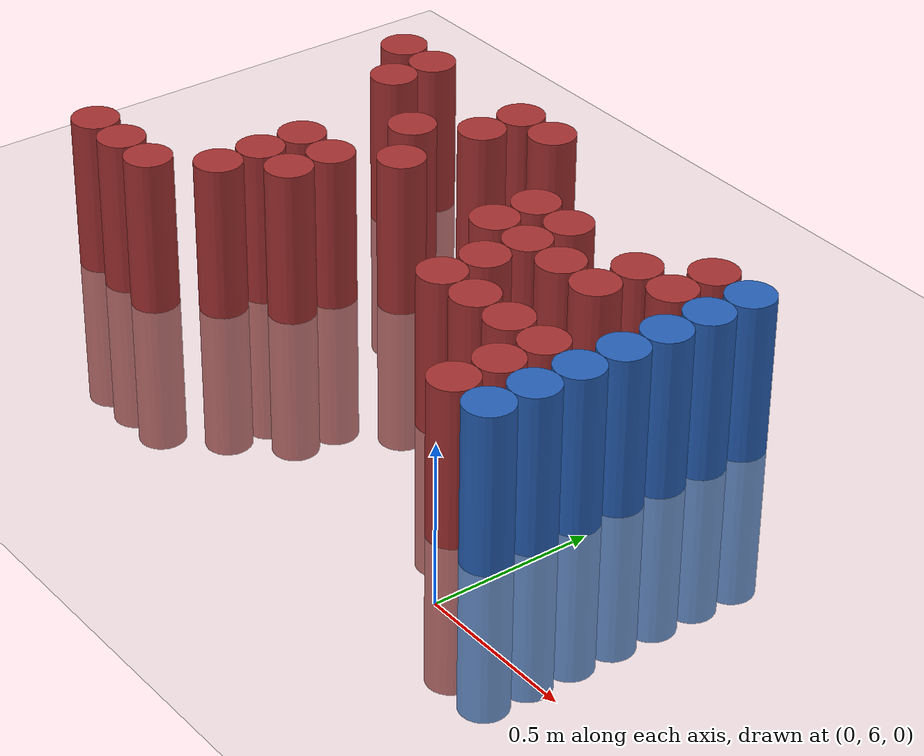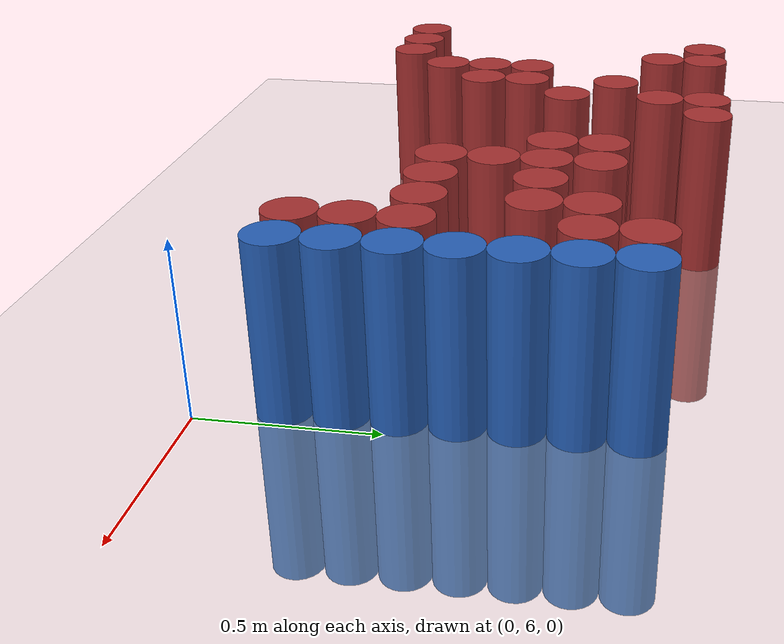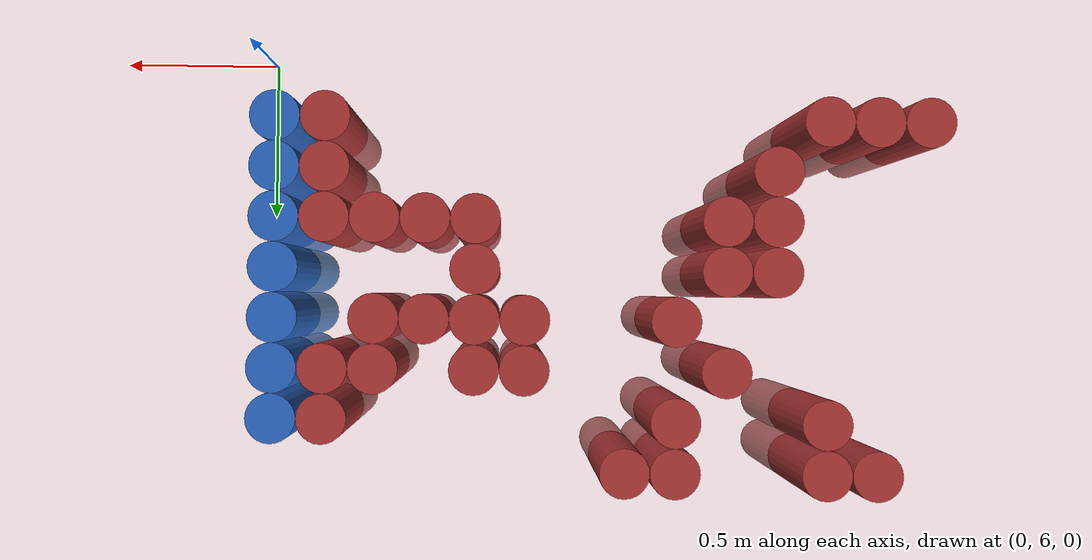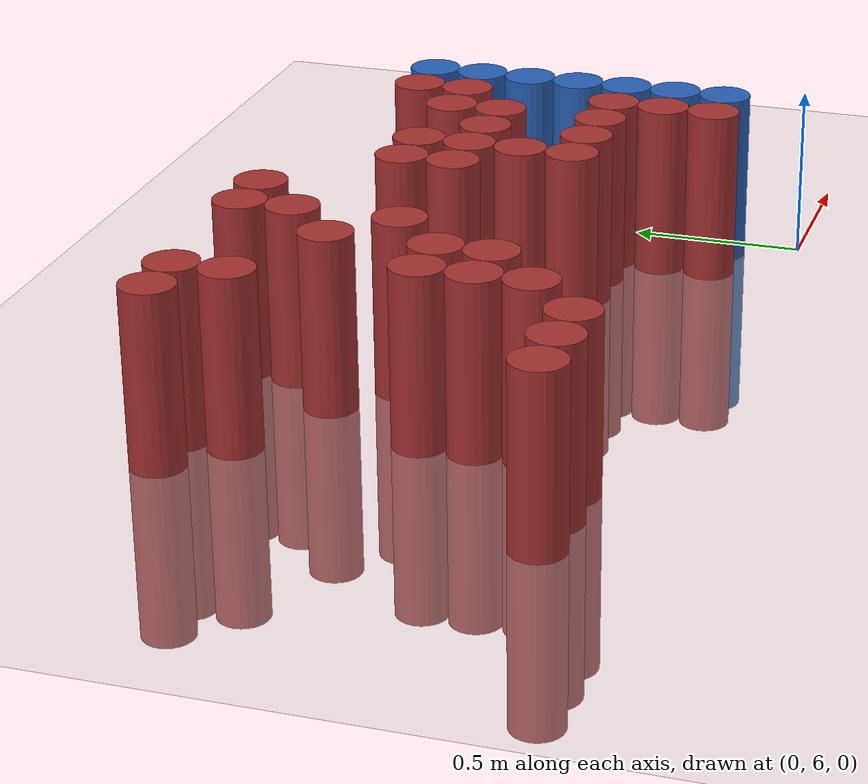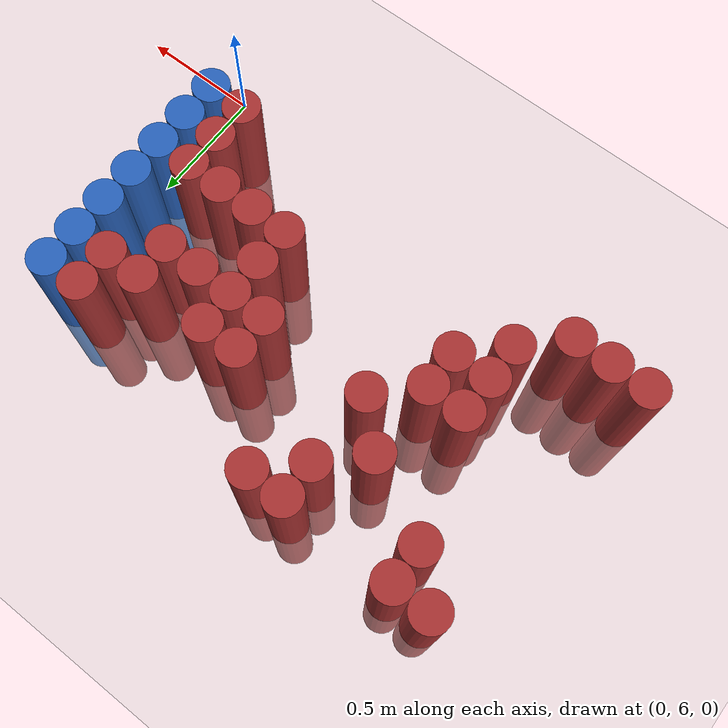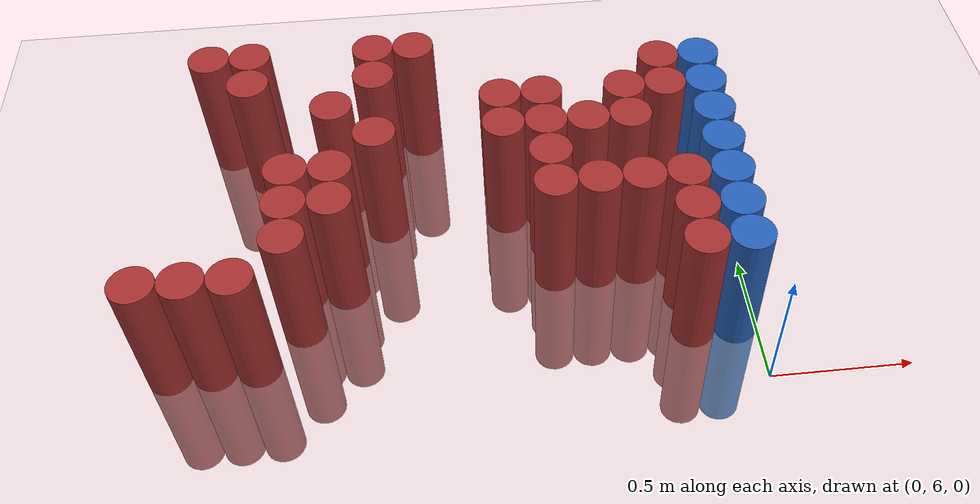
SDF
<sdf version="1.6">
 <world name="default">
  <model name="ground_plane">
   <static>1</static>
   <link name="link">
    <collision name="collision">
     <geometry><plane><normal>0 0 1</normal><size>100 100</size></plane></geometry>
     <surface><friction><ode><mu>100</mu><mu2>50</mu2></ode></friction></surface>
    </collision>
    <visual name="visual">
     <cast_shadows>0</cast_shadows>
     <geometry><plane><normal>0 0 1</normal><size>100 100</size></plane></geometry>
     <material>
      <script><uri>file://media/materials/scripts/gazebo.material</uri><name>Gazebo/Grey</name></script>
     </material>
    </visual>
   </link>
  </model>
  <model name="unit_cylinder_224">
   <static>1</static>
   <pose>-2.025000 6.225000 0.000000 0.000000 0.000000 0.000000</pose>
   <link name="link">
    <inertial>
     <mass>1</mass>
     <inertia><ixx>0.145833</ixx><ixy>0</ixy><ixz>0</ixz><iyy>0.145833</iyy><iyz>0</iyz><izz>0.125</izz></inertia>
    </inertial>
    <collision name="collision">
     <geometry><cylinder><radius>0.075000</radius><length>1</length></cylinder></geometry>
    </collision>
    <visual name="visual">
     <geometry><cylinder><radius>0.075000</radius><length>1</length></cylinder></geometry>
     <material>
      <ambient>0.648000 0.192000 0.192000 1</ambient>
      <diffuse>0.648000 0.192000 0.192000 1</diffuse>
     </material>
     <material>
      <script><name>Gazebo/Grey</name><uri>file://media/materials/scripts/gazebo.material</uri></script>
     </material>
    </visual>
    <sensor name="sensor_contact" type="contact"><contact><collision>collision</collision></contact></sensor>
   </link>
   <plugin filename="gz-sim-touchplugin-system" name="gz::sim::systems::TouchPlugin">
    <target>robot</target>
    <namespace>robot</namespace>
    <time>0.001</time>
    <enabled>true</enabled>
   </plugin>
  </model>
  <model name="unit_cylinder_228">
   <static>1</static>
   <pose>-1.875000 6.225000 0.000000 0.000000 0.000000 0.000000</pose>
   <link name="link">
    <inertial>
     <mass>1</mass>
     <inertia><ixx>0.145833</ixx><ixy>0</ixy><ixz>0</ixz><iyy>0.145833</iyy><iyz>0</iyz><izz>0.125</izz></inertia>
    </inertial>
    <collision name="collision">
     <geometry><cylinder><radius>0.075000</radius><length>1</length></cylinder></geometry>
    </collision>
    <visual name="visual">
     <geometry><cylinder><radius>0.075000</radius><length>1</length></cylinder></geometry>
     <material>
      <ambient>0.648000 0.192000 0.192000 1</ambient>
      <diffuse>0.648000 0.192000 0.192000 1</diffuse>
     </material>
     <material>
      <script><name>Gazebo/Grey</name><uri>file://media/materials/scripts/gazebo.material</uri></script>
     </material>
    </visual>
    <sensor name="sensor_contact" type="contact"><contact><collision>collision</collision></contact></sensor>
   </link>
   <plugin filename="gz-sim-touchplugin-system" name="gz::sim::systems::TouchPlugin">
    <target>robot</target>
    <namespace>robot</namespace>
    <time>0.001</time>
    <enabled>true</enabled>
   </plugin>
  </model>
  <model name="unit_cylinder_229">
   <static>1</static>
   <pose>-1.875000 7.275000 0.000000 0.000000 0.000000 0.000000</pose>
   <link name="link">
    <inertial>
     <mass>1</mass>
     <inertia><ixx>0.145833</ixx><ixy>0</ixy><ixz>0</ixz><iyy>0.145833</iyy><iyz>0</iyz><izz>0.125</izz></inertia>
    </inertial>
    <collision name="collision">
     <geometry><cylinder><radius>0.075000</radius><length>1</length></cylinder></geometry>
    </collision>
    <visual name="visual">
     <geometry><cylinder><radius>0.075000</radius><length>1</length></cylinder></geometry>
     <material>
      <ambient>0.648000 0.192000 0.192000 1</ambient>
      <diffuse>0.648000 0.192000 0.192000 1</diffuse>
     </material>
     <material>
      <script><name>Gazebo/Grey</name><uri>file://media/materials/scripts/gazebo.material</uri></script>
     </material>
    </visual>
    <sensor name="sensor_contact" type="contact"><contact><collision>collision</collision></contact></sensor>
   </link>
   <plugin filename="gz-sim-touchplugin-system" name="gz::sim::systems::TouchPlugin">
    <target>robot</target>
    <namespace>robot</namespace>
    <time>0.001</time>
    <enabled>true</enabled>
   </plugin>
  </model>
  <model name="unit_cylinder_232">
   <static>1</static>
   <pose>-1.725000 6.225000 0.000000 0.000000 0.000000 0.000000</pose>
   <link name="link">
    <inertial>
     <mass>1</mass>
     <inertia><ixx>0.145833</ixx><ixy>0</ixy><ixz>0</ixz><iyy>0.145833</iyy><iyz>0</iyz><izz>0.125</izz></inertia>
    </inertial>
    <collision name="collision">
     <geometry><cylinder><radius>0.075000</radius><length>1</length></cylinder></geometry>
    </collision>
    <visual name="visual">
     <geometry><cylinder><radius>0.075000</radius><length>1</length></cylinder></geometry>
     <material>
      <ambient>0.648000 0.192000 0.192000 1</ambient>
      <diffuse>0.648000 0.192000 0.192000 1</diffuse>
     </material>
     <material>
      <script><name>Gazebo/Grey</name><uri>file://media/materials/scripts/gazebo.material</uri></script>
     </material>
    </visual>
    <sensor name="sensor_contact" type="contact"><contact><collision>collision</collision></contact></sensor>
   </link>
   <plugin filename="gz-sim-touchplugin-system" name="gz::sim::systems::TouchPlugin">
    <target>robot</target>
    <namespace>robot</namespace>
    <time>0.001</time>
    <enabled>true</enabled>
   </plugin>
  </model>
  <model name="unit_cylinder_233">
   <static>1</static>
   <pose>-1.725000 7.125000 0.000000 0.000000 0.000000 0.000000</pose>
   <link name="link">
    <inertial>
     <mass>1</mass>
     <inertia><ixx>0.145833</ixx><ixy>0</ixy><ixz>0</ixz><iyy>0.145833</iyy><iyz>0</iyz><izz>0.125</izz></inertia>
    </inertial>
    <collision name="collision">
     <geometry><cylinder><radius>0.075000</radius><length>1</length></cylinder></geometry>
    </collision>
    <visual name="visual">
     <geometry><cylinder><radius>0.075000</radius><length>1</length></cylinder></geometry>
     <material>
      <ambient>0.648000 0.192000 0.192000 1</ambient>
      <diffuse>0.648000 0.192000 0.192000 1</diffuse>
     </material>
     <material>
      <script><name>Gazebo/Grey</name><uri>file://media/materials/scripts/gazebo.material</uri></script>
     </material>
    </visual>
    <sensor name="sensor_contact" type="contact"><contact><collision>collision</collision></contact></sensor>
   </link>
   <plugin filename="gz-sim-touchplugin-system" name="gz::sim::systems::TouchPlugin">
    <target>robot</target>
    <namespace>robot</namespace>
    <time>0.001</time>
    <enabled>true</enabled>
   </plugin>
  </model>
  <model name="unit_cylinder_234">
   <static>1</static>
   <pose>-1.725000 7.275000 0.000000 0.000000 0.000000 0.000000</pose>
   <link name="link">
    <inertial>
     <mass>1</mass>
     <inertia><ixx>0.145833</ixx><ixy>0</ixy><ixz>0</ixz><iyy>0.145833</iyy><iyz>0</iyz><izz>0.125</izz></inertia>
    </inertial>
    <collision name="collision">
     <geometry><cylinder><radius>0.075000</radius><length>1</length></cylinder></geometry>
    </collision>
    <visual name="visual">
     <geometry><cylinder><radius>0.075000</radius><length>1</length></cylinder></geometry>
     <material>
      <ambient>0.648000 0.192000 0.192000 1</ambient>
      <diffuse>0.648000 0.192000 0.192000 1</diffuse>
     </material>
     <material>
      <script><name>Gazebo/Grey</name><uri>file://media/materials/scripts/gazebo.material</uri></script>
     </material>
    </visual>
    <sensor name="sensor_contact" type="contact"><contact><collision>collision</collision></contact></sensor>
   </link>
   <plugin filename="gz-sim-touchplugin-system" name="gz::sim::systems::TouchPlugin">
    <target>robot</target>
    <namespace>robot</namespace>
    <time>0.001</time>
    <enabled>true</enabled>
   </plugin>
  </model>
  <model name="unit_cylinder_238">
   <static>1</static>
   <pose>-1.575000 6.375000 0.000000 0.000000 0.000000 0.000000</pose>
   <link name="link">
    <inertial>
     <mass>1</mass>
     <inertia><ixx>0.145833</ixx><ixy>0</ixy><ixz>0</ixz><iyy>0.145833</iyy><iyz>0</iyz><izz>0.125</izz></inertia>
    </inertial>
    <collision name="collision">
     <geometry><cylinder><radius>0.075000</radius><length>1</length></cylinder></geometry>
    </collision>
    <visual name="visual">
     <geometry><cylinder><radius>0.075000</radius><length>1</length></cylinder></geometry>
     <material>
      <ambient>0.648000 0.192000 0.192000 1</ambient>
      <diffuse>0.648000 0.192000 0.192000 1</diffuse>
     </material>
     <material>
      <script><name>Gazebo/Grey</name><uri>file://media/materials/scripts/gazebo.material</uri></script>
     </material>
    </visual>
    <sensor name="sensor_contact" type="contact"><contact><collision>collision</collision></contact></sensor>
   </link>
   <plugin filename="gz-sim-touchplugin-system" name="gz::sim::systems::TouchPlugin">
    <target>robot</target>
    <namespace>robot</namespace>
    <time>0.001</time>
    <enabled>true</enabled>
   </plugin>
  </model>
  <model name="unit_cylinder_239">
   <static>1</static>
   <pose>-1.575000 6.525000 0.000000 0.000000 0.000000 0.000000</pose>
   <link name="link">
    <inertial>
     <mass>1</mass>
     <inertia><ixx>0.145833</ixx><ixy>0</ixy><ixz>0</ixz><iyy>0.145833</iyy><iyz>0</iyz><izz>0.125</izz></inertia>
    </inertial>
    <collision name="collision">
     <geometry><cylinder><radius>0.075000</radius><length>1</length></cylinder></geometry>
    </collision>
    <visual name="visual">
     <geometry><cylinder><radius>0.075000</radius><length>1</length></cylinder></geometry>
     <material>
      <ambient>0.648000 0.192000 0.192000 1</ambient>
      <diffuse>0.648000 0.192000 0.192000 1</diffuse>
     </material>
     <material>
      <script><name>Gazebo/Grey</name><uri>file://media/materials/scripts/gazebo.material</uri></script>
     </material>
    </visual>
    <sensor name="sensor_contact" type="contact"><contact><collision>collision</collision></contact></sensor>
   </link>
   <plugin filename="gz-sim-touchplugin-system" name="gz::sim::systems::TouchPlugin">
    <target>robot</target>
    <namespace>robot</namespace>
    <time>0.001</time>
    <enabled>true</enabled>
   </plugin>
  </model>
  <model name="unit_cylinder_240">
   <static>1</static>
   <pose>-1.575000 6.675000 0.000000 0.000000 0.000000 0.000000</pose>
   <link name="link">
    <inertial>
     <mass>1</mass>
     <inertia><ixx>0.145833</ixx><ixy>0</ixy><ixz>0</ixz><iyy>0.145833</iyy><iyz>0</iyz><izz>0.125</izz></inertia>
    </inertial>
    <collision name="collision">
     <geometry><cylinder><radius>0.075000</radius><length>1</length></cylinder></geometry>
    </collision>
    <visual name="visual">
     <geometry><cylinder><radius>0.075000</radius><length>1</length></cylinder></geometry>
     <material>
      <ambient>0.648000 0.192000 0.192000 1</ambient>
      <diffuse>0.648000 0.192000 0.192000 1</diffuse>
     </material>
     <material>
      <script><name>Gazebo/Grey</name><uri>file://media/materials/scripts/gazebo.material</uri></script>
     </material>
    </visual>
    <sensor name="sensor_contact" type="contact"><contact><collision>collision</collision></contact></sensor>
   </link>
   <plugin filename="gz-sim-touchplugin-system" name="gz::sim::systems::TouchPlugin">
    <target>robot</target>
    <namespace>robot</namespace>
    <time>0.001</time>
    <enabled>true</enabled>
   </plugin>
  </model>
  <model name="unit_cylinder_243">
   <static>1</static>
   <pose>-1.425000 6.525000 0.000000 0.000000 0.000000 0.000000</pose>
   <link name="link">
    <inertial>
     <mass>1</mass>
     <inertia><ixx>0.145833</ixx><ixy>0</ixy><ixz>0</ixz><iyy>0.145833</iyy><iyz>0</iyz><izz>0.125</izz></inertia>
    </inertial>
    <collision name="collision">
     <geometry><cylinder><radius>0.075000</radius><length>1</length></cylinder></geometry>
    </collision>
    <visual name="visual">
     <geometry><cylinder><radius>0.075000</radius><length>1</length></cylinder></geometry>
     <material>
      <ambient>0.648000 0.192000 0.192000 1</ambient>
      <diffuse>0.648000 0.192000 0.192000 1</diffuse>
     </material>
     <material>
      <script><name>Gazebo/Grey</name><uri>file://media/materials/scripts/gazebo.material</uri></script>
     </material>
    </visual>
    <sensor name="sensor_contact" type="contact"><contact><collision>collision</collision></contact></sensor>
   </link>
   <plugin filename="gz-sim-touchplugin-system" name="gz::sim::systems::TouchPlugin">
    <target>robot</target>
    <namespace>robot</namespace>
    <time>0.001</time>
    <enabled>true</enabled>
   </plugin>
  </model>
  <model name="unit_cylinder_244">
   <static>1</static>
   <pose>-1.425000 6.675000 0.000000 0.000000 0.000000 0.000000</pose>
   <link name="link">
    <inertial>
     <mass>1</mass>
     <inertia><ixx>0.145833</ixx><ixy>0</ixy><ixz>0</ixz><iyy>0.145833</iyy><iyz>0</iyz><izz>0.125</izz></inertia>
    </inertial>
    <collision name="collision">
     <geometry><cylinder><radius>0.075000</radius><length>1</length></cylinder></geometry>
    </collision>
    <visual name="visual">
     <geometry><cylinder><radius>0.075000</radius><length>1</length></cylinder></geometry>
     <material>
      <ambient>0.648000 0.192000 0.192000 1</ambient>
      <diffuse>0.648000 0.192000 0.192000 1</diffuse>
     </material>
     <material>
      <script><name>Gazebo/Grey</name><uri>file://media/materials/scripts/gazebo.material</uri></script>
     </material>
    </visual>
    <sensor name="sensor_contact" type="contact"><contact><collision>collision</collision></contact></sensor>
   </link>
   <plugin filename="gz-sim-touchplugin-system" name="gz::sim::systems::TouchPlugin">
    <target>robot</target>
    <namespace>robot</namespace>
    <time>0.001</time>
    <enabled>true</enabled>
   </plugin>
  </model>
  <model name="unit_cylinder_245">
   <static>1</static>
   <pose>-1.425000 6.975000 0.000000 0.000000 0.000000 0.000000</pose>
   <link name="link">
    <inertial>
     <mass>1</mass>
     <inertia><ixx>0.145833</ixx><ixy>0</ixy><ixz>0</ixz><iyy>0.145833</iyy><iyz>0</iyz><izz>0.125</izz></inertia>
    </inertial>
    <collision name="collision">
     <geometry><cylinder><radius>0.075000</radius><length>1</length></cylinder></geometry>
    </collision>
    <visual name="visual">
     <geometry><cylinder><radius>0.075000</radius><length>1</length></cylinder></geometry>
     <material>
      <ambient>0.648000 0.192000 0.192000 1</ambient>
      <diffuse>0.648000 0.192000 0.192000 1</diffuse>
     </material>
     <material>
      <script><name>Gazebo/Grey</name><uri>file://media/materials/scripts/gazebo.material</uri></script>
     </material>
    </visual>
    <sensor name="sensor_contact" type="contact"><contact><collision>collision</collision></contact></sensor>
   </link>
   <plugin filename="gz-sim-touchplugin-system" name="gz::sim::systems::TouchPlugin">
    <target>robot</target>
    <namespace>robot</namespace>
    <time>0.001</time>
    <enabled>true</enabled>
   </plugin>
  </model>
  <model name="unit_cylinder_248">
   <static>1</static>
   <pose>-1.275000 6.825000 0.000000 0.000000 0.000000 0.000000</pose>
   <link name="link">
    <inertial>
     <mass>1</mass>
     <inertia><ixx>0.145833</ixx><ixy>0</ixy><ixz>0</ixz><iyy>0.145833</iyy><iyz>0</iyz><izz>0.125</izz></inertia>
    </inertial>
    <collision name="collision">
     <geometry><cylinder><radius>0.075000</radius><length>1</length></cylinder></geometry>
    </collision>
    <visual name="visual">
     <geometry><cylinder><radius>0.075000</radius><length>1</length></cylinder></geometry>
     <material>
      <ambient>0.648000 0.192000 0.192000 1</ambient>
      <diffuse>0.648000 0.192000 0.192000 1</diffuse>
     </material>
     <material>
      <script><name>Gazebo/Grey</name><uri>file://media/materials/scripts/gazebo.material</uri></script>
     </material>
    </visual>
    <sensor name="sensor_contact" type="contact"><contact><collision>collision</collision></contact></sensor>
   </link>
   <plugin filename="gz-sim-touchplugin-system" name="gz::sim::systems::TouchPlugin">
    <target>robot</target>
    <namespace>robot</namespace>
    <time>0.001</time>
    <enabled>true</enabled>
   </plugin>
  </model>
  <model name="unit_cylinder_249">
   <static>1</static>
   <pose>-1.275000 7.125000 0.000000 0.000000 0.000000 0.000000</pose>
   <link name="link">
    <inertial>
     <mass>1</mass>
     <inertia><ixx>0.145833</ixx><ixy>0</ixy><ixz>0</ixz><iyy>0.145833</iyy><iyz>0</iyz><izz>0.125</izz></inertia>
    </inertial>
    <collision name="collision">
     <geometry><cylinder><radius>0.075000</radius><length>1</length></cylinder></geometry>
    </collision>
    <visual name="visual">
     <geometry><cylinder><radius>0.075000</radius><length>1</length></cylinder></geometry>
     <material>
      <ambient>0.648000 0.192000 0.192000 1</ambient>
      <diffuse>0.648000 0.192000 0.192000 1</diffuse>
     </material>
     <material>
      <script><name>Gazebo/Grey</name><uri>file://media/materials/scripts/gazebo.material</uri></script>
     </material>
    </visual>
    <sensor name="sensor_contact" type="contact"><contact><collision>collision</collision></contact></sensor>
   </link>
   <plugin filename="gz-sim-touchplugin-system" name="gz::sim::systems::TouchPlugin">
    <target>robot</target>
    <namespace>robot</namespace>
    <time>0.001</time>
    <enabled>true</enabled>
   </plugin>
  </model>
  <model name="unit_cylinder_250">
   <static>1</static>
   <pose>-1.275000 7.275000 0.000000 0.000000 0.000000 0.000000</pose>
   <link name="link">
    <inertial>
     <mass>1</mass>
     <inertia><ixx>0.145833</ixx><ixy>0</ixy><ixz>0</ixz><iyy>0.145833</iyy><iyz>0</iyz><izz>0.125</izz></inertia>
    </inertial>
    <collision name="collision">
     <geometry><cylinder><radius>0.075000</radius><length>1</length></cylinder></geometry>
    </collision>
    <visual name="visual">
     <geometry><cylinder><radius>0.075000</radius><length>1</length></cylinder></geometry>
     <material>
      <ambient>0.648000 0.192000 0.192000 1</ambient>
      <diffuse>0.648000 0.192000 0.192000 1</diffuse>
     </material>
     <material>
      <script><name>Gazebo/Grey</name><uri>file://media/materials/scripts/gazebo.material</uri></script>
     </material>
    </visual>
    <sensor name="sensor_contact" type="contact"><contact><collision>collision</collision></contact></sensor>
   </link>
   <plugin filename="gz-sim-touchplugin-system" name="gz::sim::systems::TouchPlugin">
    <target>robot</target>
    <namespace>robot</namespace>
    <time>0.001</time>
    <enabled>true</enabled>
   </plugin>
  </model>
  <model name="unit_cylinder_253">
   <static>1</static>
   <pose>-1.125000 7.275000 0.000000 0.000000 0.000000 0.000000</pose>
   <link name="link">
    <inertial>
     <mass>1</mass>
     <inertia><ixx>0.145833</ixx><ixy>0</ixy><ixz>0</ixz><iyy>0.145833</iyy><iyz>0</iyz><izz>0.125</izz></inertia>
    </inertial>
    <collision name="collision">
     <geometry><cylinder><radius>0.075000</radius><length>1</length></cylinder></geometry>
    </collision>
    <visual name="visual">
     <geometry><cylinder><radius>0.075000</radius><length>1</length></cylinder></geometry>
     <material>
      <ambient>0.648000 0.192000 0.192000 1</ambient>
      <diffuse>0.648000 0.192000 0.192000 1</diffuse>
     </material>
     <material>
      <script><name>Gazebo/Grey</name><uri>file://media/materials/scripts/gazebo.material</uri></script>
     </material>
    </visual>
    <sensor name="sensor_contact" type="contact"><contact><collision>collision</collision></contact></sensor>
   </link>
   <plugin filename="gz-sim-touchplugin-system" name="gz::sim::systems::TouchPlugin">
    <target>robot</target>
    <namespace>robot</namespace>
    <time>0.001</time>
    <enabled>true</enabled>
   </plugin>
  </model>
  <model name="unit_cylinder_266">
   <static>1</static>
   <pose>-0.825000 6.825000 0.000000 0.000000 0.000000 0.000000</pose>
   <link name="link">
    <inertial>
     <mass>1</mass>
     <inertia><ixx>0.145833</ixx><ixy>0</ixy><ixz>0</ixz><iyy>0.145833</iyy><iyz>0</iyz><izz>0.125</izz></inertia>
    </inertial>
    <collision name="collision">
     <geometry><cylinder><radius>0.075000</radius><length>1</length></cylinder></geometry>
    </collision>
    <visual name="visual">
     <geometry><cylinder><radius>0.075000</radius><length>1</length></cylinder></geometry>
     <material>
      <ambient>0.648000 0.192000 0.192000 1</ambient>
      <diffuse>0.648000 0.192000 0.192000 1</diffuse>
     </material>
     <material>
      <script><name>Gazebo/Grey</name><uri>file://media/materials/scripts/gazebo.material</uri></script>
     </material>
    </visual>
    <sensor name="sensor_contact" type="contact"><contact><collision>collision</collision></contact></sensor>
   </link>
   <plugin filename="gz-sim-touchplugin-system" name="gz::sim::systems::TouchPlugin">
    <target>robot</target>
    <namespace>robot</namespace>
    <time>0.001</time>
    <enabled>true</enabled>
   </plugin>
  </model>
  <model name="unit_cylinder_267">
   <static>1</static>
   <pose>-0.825000 6.975000 0.000000 0.000000 0.000000 0.000000</pose>
   <link name="link">
    <inertial>
     <mass>1</mass>
     <inertia><ixx>0.145833</ixx><ixy>0</ixy><ixz>0</ixz><iyy>0.145833</iyy><iyz>0</iyz><izz>0.125</izz></inertia>
    </inertial>
    <collision name="collision">
     <geometry><cylinder><radius>0.075000</radius><length>1</length></cylinder></geometry>
    </collision>
    <visual name="visual">
     <geometry><cylinder><radius>0.075000</radius><length>1</length></cylinder></geometry>
     <material>
      <ambient>0.648000 0.192000 0.192000 1</ambient>
      <diffuse>0.648000 0.192000 0.192000 1</diffuse>
     </material>
     <material>
      <script><name>Gazebo/Grey</name><uri>file://media/materials/scripts/gazebo.material</uri></script>
     </material>
    </visual>
    <sensor name="sensor_contact" type="contact"><contact><collision>collision</collision></contact></sensor>
   </link>
   <plugin filename="gz-sim-touchplugin-system" name="gz::sim::systems::TouchPlugin">
    <target>robot</target>
    <namespace>robot</namespace>
    <time>0.001</time>
    <enabled>true</enabled>
   </plugin>
  </model>
  <model name="unit_cylinder_277">
   <static>1</static>
   <pose>-0.675000 6.525000 0.000000 0.000000 0.000000 0.000000</pose>
   <link name="link">
    <inertial>
     <mass>1</mass>
     <inertia><ixx>0.145833</ixx><ixy>0</ixy><ixz>0</ixz><iyy>0.145833</iyy><iyz>0</iyz><izz>0.125</izz></inertia>
    </inertial>
    <collision name="collision">
     <geometry><cylinder><radius>0.075000</radius><length>1</length></cylinder></geometry>
    </collision>
    <visual name="visual">
     <geometry><cylinder><radius>0.075000</radius><length>1</length></cylinder></geometry>
     <material>
      <ambient>0.648000 0.192000 0.192000 1</ambient>
      <diffuse>0.648000 0.192000 0.192000 1</diffuse>
     </material>
     <material>
      <script><name>Gazebo/Grey</name><uri>file://media/materials/scripts/gazebo.material</uri></script>
     </material>
    </visual>
    <sensor name="sensor_contact" type="contact"><contact><collision>collision</collision></contact></sensor>
   </link>
   <plugin filename="gz-sim-touchplugin-system" name="gz::sim::systems::TouchPlugin">
    <target>robot</target>
    <namespace>robot</namespace>
    <time>0.001</time>
    <enabled>true</enabled>
   </plugin>
  </model>
  <model name="unit_cylinder_278">
   <static>1</static>
   <pose>-0.675000 6.675000 0.000000 0.000000 0.000000 0.000000</pose>
   <link name="link">
    <inertial>
     <mass>1</mass>
     <inertia><ixx>0.145833</ixx><ixy>0</ixy><ixz>0</ixz><iyy>0.145833</iyy><iyz>0</iyz><izz>0.125</izz></inertia>
    </inertial>
    <collision name="collision">
     <geometry><cylinder><radius>0.075000</radius><length>1</length></cylinder></geometry>
    </collision>
    <visual name="visual">
     <geometry><cylinder><radius>0.075000</radius><length>1</length></cylinder></geometry>
     <material>
      <ambient>0.648000 0.192000 0.192000 1</ambient>
      <diffuse>0.648000 0.192000 0.192000 1</diffuse>
     </material>
     <material>
      <script><name>Gazebo/Grey</name><uri>file://media/materials/scripts/gazebo.material</uri></script>
     </material>
    </visual>
    <sensor name="sensor_contact" type="contact"><contact><collision>collision</collision></contact></sensor>
   </link>
   <plugin filename="gz-sim-touchplugin-system" name="gz::sim::systems::TouchPlugin">
    <target>robot</target>
    <namespace>robot</namespace>
    <time>0.001</time>
    <enabled>true</enabled>
   </plugin>
  </model>
  <model name="unit_cylinder_279">
   <static>1</static>
   <pose>-0.675000 6.825000 0.000000 0.000000 0.000000 0.000000</pose>
   <link name="link">
    <inertial>
     <mass>1</mass>
     <inertia><ixx>0.145833</ixx><ixy>0</ixy><ixz>0</ixz><iyy>0.145833</iyy><iyz>0</iyz><izz>0.125</izz></inertia>
    </inertial>
    <collision name="collision">
     <geometry><cylinder><radius>0.075000</radius><length>1</length></cylinder></geometry>
    </collision>
    <visual name="visual">
     <geometry><cylinder><radius>0.075000</radius><length>1</length></cylinder></geometry>
     <material>
      <ambient>0.648000 0.192000 0.192000 1</ambient>
      <diffuse>0.648000 0.192000 0.192000 1</diffuse>
     </material>
     <material>
      <script><name>Gazebo/Grey</name><uri>file://media/materials/scripts/gazebo.material</uri></script>
     </material>
    </visual>
    <sensor name="sensor_contact" type="contact"><contact><collision>collision</collision></contact></sensor>
   </link>
   <plugin filename="gz-sim-touchplugin-system" name="gz::sim::systems::TouchPlugin">
    <target>robot</target>
    <namespace>robot</namespace>
    <time>0.001</time>
    <enabled>true</enabled>
   </plugin>
  </model>
  <model name="unit_cylinder_280">
   <static>1</static>
   <pose>-0.675000 6.975000 0.000000 0.000000 0.000000 0.000000</pose>
   <link name="link">
    <inertial>
     <mass>1</mass>
     <inertia><ixx>0.145833</ixx><ixy>0</ixy><ixz>0</ixz><iyy>0.145833</iyy><iyz>0</iyz><izz>0.125</izz></inertia>
    </inertial>
    <collision name="collision">
     <geometry><cylinder><radius>0.075000</radius><length>1</length></cylinder></geometry>
    </collision>
    <visual name="visual">
     <geometry><cylinder><radius>0.075000</radius><length>1</length></cylinder></geometry>
     <material>
      <ambient>0.648000 0.192000 0.192000 1</ambient>
      <diffuse>0.648000 0.192000 0.192000 1</diffuse>
     </material>
     <material>
      <script><name>Gazebo/Grey</name><uri>file://media/materials/scripts/gazebo.material</uri></script>
     </material>
    </visual>
    <sensor name="sensor_contact" type="contact"><contact><collision>collision</collision></contact></sensor>
   </link>
   <plugin filename="gz-sim-touchplugin-system" name="gz::sim::systems::TouchPlugin">
    <target>robot</target>
    <namespace>robot</namespace>
    <time>0.001</time>
    <enabled>true</enabled>
   </plugin>
  </model>
  <model name="unit_cylinder_291">
   <static>1</static>
   <pose>-0.525000 6.525000 0.000000 0.000000 0.000000 0.000000</pose>
   <link name="link">
    <inertial>
     <mass>1</mass>
     <inertia><ixx>0.145833</ixx><ixy>0</ixy><ixz>0</ixz><iyy>0.145833</iyy><iyz>0</iyz><izz>0.125</izz></inertia>
    </inertial>
    <collision name="collision">
     <geometry><cylinder><radius>0.075000</radius><length>1</length></cylinder></geometry>
    </collision>
    <visual name="visual">
     <geometry><cylinder><radius>0.075000</radius><length>1</length></cylinder></geometry>
     <material>
      <ambient>0.648000 0.192000 0.192000 1</ambient>
      <diffuse>0.648000 0.192000 0.192000 1</diffuse>
     </material>
     <material>
      <script><name>Gazebo/Grey</name><uri>file://media/materials/scripts/gazebo.material</uri></script>
     </material>
    </visual>
    <sensor name="sensor_contact" type="contact"><contact><collision>collision</collision></contact></sensor>
   </link>
   <plugin filename="gz-sim-touchplugin-system" name="gz::sim::systems::TouchPlugin">
    <target>robot</target>
    <namespace>robot</namespace>
    <time>0.001</time>
    <enabled>true</enabled>
   </plugin>
  </model>
  <model name="unit_cylinder_292">
   <static>1</static>
   <pose>-0.525000 6.825000 0.000000 0.000000 0.000000 0.000000</pose>
   <link name="link">
    <inertial>
     <mass>1</mass>
     <inertia><ixx>0.145833</ixx><ixy>0</ixy><ixz>0</ixz><iyy>0.145833</iyy><iyz>0</iyz><izz>0.125</izz></inertia>
    </inertial>
    <collision name="collision">
     <geometry><cylinder><radius>0.075000</radius><length>1</length></cylinder></geometry>
    </collision>
    <visual name="visual">
     <geometry><cylinder><radius>0.075000</radius><length>1</length></cylinder></geometry>
     <material>
      <ambient>0.648000 0.192000 0.192000 1</ambient>
      <diffuse>0.648000 0.192000 0.192000 1</diffuse>
     </material>
     <material>
      <script><name>Gazebo/Grey</name><uri>file://media/materials/scripts/gazebo.material</uri></script>
     </material>
    </visual>
    <sensor name="sensor_contact" type="contact"><contact><collision>collision</collision></contact></sensor>
   </link>
   <plugin filename="gz-sim-touchplugin-system" name="gz::sim::systems::TouchPlugin">
    <target>robot</target>
    <namespace>robot</namespace>
    <time>0.001</time>
    <enabled>true</enabled>
   </plugin>
  </model>
  <model name="unit_cylinder_302">
   <static>1</static>
   <pose>-0.375000 6.525000 0.000000 0.000000 0.000000 0.000000</pose>
   <link name="link">
    <inertial>
     <mass>1</mass>
     <inertia><ixx>0.145833</ixx><ixy>0</ixy><ixz>0</ixz><iyy>0.145833</iyy><iyz>0</iyz><izz>0.125</izz></inertia>
    </inertial>
    <collision name="collision">
     <geometry><cylinder><radius>0.075000</radius><length>1</length></cylinder></geometry>
    </collision>
    <visual name="visual">
     <geometry><cylinder><radius>0.075000</radius><length>1</length></cylinder></geometry>
     <material>
      <ambient>0.648000 0.192000 0.192000 1</ambient>
      <diffuse>0.648000 0.192000 0.192000 1</diffuse>
     </material>
     <material>
      <script><name>Gazebo/Grey</name><uri>file://media/materials/scripts/gazebo.material</uri></script>
     </material>
    </visual>
    <sensor name="sensor_contact" type="contact"><contact><collision>collision</collision></contact></sensor>
   </link>
   <plugin filename="gz-sim-touchplugin-system" name="gz::sim::systems::TouchPlugin">
    <target>robot</target>
    <namespace>robot</namespace>
    <time>0.001</time>
    <enabled>true</enabled>
   </plugin>
  </model>
  <model name="unit_cylinder_303">
   <static>1</static>
   <pose>-0.375000 6.825000 0.000000 0.000000 0.000000 0.000000</pose>
   <link name="link">
    <inertial>
     <mass>1</mass>
     <inertia><ixx>0.145833</ixx><ixy>0</ixy><ixz>0</ixz><iyy>0.145833</iyy><iyz>0</iyz><izz>0.125</izz></inertia>
    </inertial>
    <collision name="collision">
     <geometry><cylinder><radius>0.075000</radius><length>1</length></cylinder></geometry>
    </collision>
    <visual name="visual">
     <geometry><cylinder><radius>0.075000</radius><length>1</length></cylinder></geometry>
     <material>
      <ambient>0.648000 0.192000 0.192000 1</ambient>
      <diffuse>0.648000 0.192000 0.192000 1</diffuse>
     </material>
     <material>
      <script><name>Gazebo/Grey</name><uri>file://media/materials/scripts/gazebo.material</uri></script>
     </material>
    </visual>
    <sensor name="sensor_contact" type="contact"><contact><collision>collision</collision></contact></sensor>
   </link>
   <plugin filename="gz-sim-touchplugin-system" name="gz::sim::systems::TouchPlugin">
    <target>robot</target>
    <namespace>robot</namespace>
    <time>0.001</time>
    <enabled>true</enabled>
   </plugin>
  </model>
  <model name="unit_cylinder_304">
   <static>1</static>
   <pose>-0.375000 6.975000 0.000000 0.000000 0.000000 0.000000</pose>
   <link name="link">
    <inertial>
     <mass>1</mass>
     <inertia><ixx>0.145833</ixx><ixy>0</ixy><ixz>0</ixz><iyy>0.145833</iyy><iyz>0</iyz><izz>0.125</izz></inertia>
    </inertial>
    <collision name="collision">
     <geometry><cylinder><radius>0.075000</radius><length>1</length></cylinder></geometry>
    </collision>
    <visual name="visual">
     <geometry><cylinder><radius>0.075000</radius><length>1</length></cylinder></geometry>
     <material>
      <ambient>0.648000 0.192000 0.192000 1</ambient>
      <diffuse>0.648000 0.192000 0.192000 1</diffuse>
     </material>
     <material>
      <script><name>Gazebo/Grey</name><uri>file://media/materials/scripts/gazebo.material</uri></script>
     </material>
    </visual>
    <sensor name="sensor_contact" type="contact"><contact><collision>collision</collision></contact></sensor>
   </link>
   <plugin filename="gz-sim-touchplugin-system" name="gz::sim::systems::TouchPlugin">
    <target>robot</target>
    <namespace>robot</namespace>
    <time>0.001</time>
    <enabled>true</enabled>
   </plugin>
  </model>
  <model name="unit_cylinder_310">
   <static>1</static>
   <pose>-0.225000 6.225000 0.000000 0.000000 0.000000 0.000000</pose>
   <link name="link">
    <inertial>
     <mass>1</mass>
     <inertia><ixx>0.145833</ixx><ixy>0</ixy><ixz>0</ixz><iyy>0.145833</iyy><iyz>0</iyz><izz>0.125</izz></inertia>
    </inertial>
    <collision name="collision">
     <geometry><cylinder><radius>0.075000</radius><length>1</length></cylinder></geometry>
    </collision>
    <visual name="visual">
     <geometry><cylinder><radius>0.075000</radius><length>1</length></cylinder></geometry>
     <material>
      <ambient>0.648000 0.192000 0.192000 1</ambient>
      <diffuse>0.648000 0.192000 0.192000 1</diffuse>
     </material>
     <material>
      <script><name>Gazebo/Grey</name><uri>file://media/materials/scripts/gazebo.material</uri></script>
     </material>
    </visual>
    <sensor name="sensor_contact" type="contact"><contact><collision>collision</collision></contact></sensor>
   </link>
   <plugin filename="gz-sim-touchplugin-system" name="gz::sim::systems::TouchPlugin">
    <target>robot</target>
    <namespace>robot</namespace>
    <time>0.001</time>
    <enabled>true</enabled>
   </plugin>
  </model>
  <model name="unit_cylinder_311">
   <static>1</static>
   <pose>-0.225000 6.375000 0.000000 0.000000 0.000000 0.000000</pose>
   <link name="link">
    <inertial>
     <mass>1</mass>
     <inertia><ixx>0.145833</ixx><ixy>0</ixy><ixz>0</ixz><iyy>0.145833</iyy><iyz>0</iyz><izz>0.125</izz></inertia>
    </inertial>
    <collision name="collision">
     <geometry><cylinder><radius>0.075000</radius><length>1</length></cylinder></geometry>
    </collision>
    <visual name="visual">
     <geometry><cylinder><radius>0.075000</radius><length>1</length></cylinder></geometry>
     <material>
      <ambient>0.648000 0.192000 0.192000 1</ambient>
      <diffuse>0.648000 0.192000 0.192000 1</diffuse>
     </material>
     <material>
      <script><name>Gazebo/Grey</name><uri>file://media/materials/scripts/gazebo.material</uri></script>
     </material>
    </visual>
    <sensor name="sensor_contact" type="contact"><contact><collision>collision</collision></contact></sensor>
   </link>
   <plugin filename="gz-sim-touchplugin-system" name="gz::sim::systems::TouchPlugin">
    <target>robot</target>
    <namespace>robot</namespace>
    <time>0.001</time>
    <enabled>true</enabled>
   </plugin>
  </model>
  <model name="unit_cylinder_312">
   <static>1</static>
   <pose>-0.225000 6.525000 0.000000 0.000000 0.000000 0.000000</pose>
   <link name="link">
    <inertial>
     <mass>1</mass>
     <inertia><ixx>0.145833</ixx><ixy>0</ixy><ixz>0</ixz><iyy>0.145833</iyy><iyz>0</iyz><izz>0.125</izz></inertia>
    </inertial>
    <collision name="collision">
     <geometry><cylinder><radius>0.075000</radius><length>1</length></cylinder></geometry>
    </collision>
    <visual name="visual">
     <geometry><cylinder><radius>0.075000</radius><length>1</length></cylinder></geometry>
     <material>
      <ambient>0.648000 0.192000 0.192000 1</ambient>
      <diffuse>0.648000 0.192000 0.192000 1</diffuse>
     </material>
     <material>
      <script><name>Gazebo/Grey</name><uri>file://media/materials/scripts/gazebo.material</uri></script>
     </material>
    </visual>
    <sensor name="sensor_contact" type="contact"><contact><collision>collision</collision></contact></sensor>
   </link>
   <plugin filename="gz-sim-touchplugin-system" name="gz::sim::systems::TouchPlugin">
    <target>robot</target>
    <namespace>robot</namespace>
    <time>0.001</time>
    <enabled>true</enabled>
   </plugin>
  </model>
  <model name="unit_cylinder_313">
   <static>1</static>
   <pose>-0.225000 6.975000 0.000000 0.000000 0.000000 0.000000</pose>
   <link name="link">
    <inertial>
     <mass>1</mass>
     <inertia><ixx>0.145833</ixx><ixy>0</ixy><ixz>0</ixz><iyy>0.145833</iyy><iyz>0</iyz><izz>0.125</izz></inertia>
    </inertial>
    <collision name="collision">
     <geometry><cylinder><radius>0.075000</radius><length>1</length></cylinder></geometry>
    </collision>
    <visual name="visual">
     <geometry><cylinder><radius>0.075000</radius><length>1</length></cylinder></geometry>
     <material>
      <ambient>0.648000 0.192000 0.192000 1</ambient>
      <diffuse>0.648000 0.192000 0.192000 1</diffuse>
     </material>
     <material>
      <script><name>Gazebo/Grey</name><uri>file://media/materials/scripts/gazebo.material</uri></script>
     </material>
    </visual>
    <sensor name="sensor_contact" type="contact"><contact><collision>collision</collision></contact></sensor>
   </link>
   <plugin filename="gz-sim-touchplugin-system" name="gz::sim::systems::TouchPlugin">
    <target>robot</target>
    <namespace>robot</namespace>
    <time>0.001</time>
    <enabled>true</enabled>
   </plugin>
  </model>
  <model name="unit_cylinder_314">
   <static>1</static>
   <pose>-0.225000 7.125000 0.000000 0.000000 0.000000 0.000000</pose>
   <link name="link">
    <inertial>
     <mass>1</mass>
     <inertia><ixx>0.145833</ixx><ixy>0</ixy><ixz>0</ixz><iyy>0.145833</iyy><iyz>0</iyz><izz>0.125</izz></inertia>
    </inertial>
    <collision name="collision">
     <geometry><cylinder><radius>0.075000</radius><length>1</length></cylinder></geometry>
    </collision>
    <visual name="visual">
     <geometry><cylinder><radius>0.075000</radius><length>1</length></cylinder></geometry>
     <material>
      <ambient>0.648000 0.192000 0.192000 1</ambient>
      <diffuse>0.648000 0.192000 0.192000 1</diffuse>
     </material>
     <material>
      <script><name>Gazebo/Grey</name><uri>file://media/materials/scripts/gazebo.material</uri></script>
     </material>
    </visual>
    <sensor name="sensor_contact" type="contact"><contact><collision>collision</collision></contact></sensor>
   </link>
   <plugin filename="gz-sim-touchplugin-system" name="gz::sim::systems::TouchPlugin">
    <target>robot</target>
    <namespace>robot</namespace>
    <time>0.001</time>
    <enabled>true</enabled>
   </plugin>
  </model>
  <model name="unit_cylinder_332">
   <static>1</static>
   <pose>-0.075000 6.225000 0.000000 0.000000 0.000000 0.000000</pose>
   <link name="link">
    <inertial>
     <mass>1</mass>
     <inertia><ixx>0.145833</ixx><ixy>0</ixy><ixz>0</ixz><iyy>0.145833</iyy><iyz>0</iyz><izz>0.125</izz></inertia>
    </inertial>
    <collision name="collision">
     <geometry><cylinder><radius>0.075000</radius><length>1</length></cylinder></geometry>
    </collision>
    <visual name="visual">
     <geometry><cylinder><radius>0.075000</radius><length>1</length></cylinder></geometry>
     <material>
      <ambient>0.152000 0.379000 0.720000 1</ambient>
      <diffuse>0.152000 0.379000 0.720000 1</diffuse>
     </material>
     <material>
      <script><name>Gazebo/Grey</name><uri>file://media/materials/scripts/gazebo.material</uri></script>
     </material>
    </visual>
    <sensor name="sensor_contact" type="contact"><contact><collision>collision</collision></contact></sensor>
   </link>
   <plugin filename="gz-sim-touchplugin-system" name="gz::sim::systems::TouchPlugin">
    <target>robot</target>
    <namespace>robot</namespace>
    <time>0.001</time>
    <enabled>true</enabled>
   </plugin>
  </model>
  <model name="unit_cylinder_333">
   <static>1</static>
   <pose>-0.075000 6.375000 0.000000 0.000000 0.000000 0.000000</pose>
   <link name="link">
    <inertial>
     <mass>1</mass>
     <inertia><ixx>0.145833</ixx><ixy>0</ixy><ixz>0</ixz><iyy>0.145833</iyy><iyz>0</iyz><izz>0.125</izz></inertia>
    </inertial>
    <collision name="collision">
     <geometry><cylinder><radius>0.075000</radius><length>1</length></cylinder></geometry>
    </collision>
    <visual name="visual">
     <geometry><cylinder><radius>0.075000</radius><length>1</length></cylinder></geometry>
     <material>
      <ambient>0.152000 0.379000 0.720000 1</ambient>
      <diffuse>0.152000 0.379000 0.720000 1</diffuse>
     </material>
     <material>
      <script><name>Gazebo/Grey</name><uri>file://media/materials/scripts/gazebo.material</uri></script>
     </material>
    </visual>
    <sensor name="sensor_contact" type="contact"><contact><collision>collision</collision></contact></sensor>
   </link>
   <plugin filename="gz-sim-touchplugin-system" name="gz::sim::systems::TouchPlugin">
    <target>robot</target>
    <namespace>robot</namespace>
    <time>0.001</time>
    <enabled>true</enabled>
   </plugin>
  </model>
  <model name="unit_cylinder_334">
   <static>1</static>
   <pose>-0.075000 6.525000 0.000000 0.000000 0.000000 0.000000</pose>
   <link name="link">
    <inertial>
     <mass>1</mass>
     <inertia><ixx>0.145833</ixx><ixy>0</ixy><ixz>0</ixz><iyy>0.145833</iyy><iyz>0</iyz><izz>0.125</izz></inertia>
    </inertial>
    <collision name="collision">
     <geometry><cylinder><radius>0.075000</radius><length>1</length></cylinder></geometry>
    </collision>
    <visual name="visual">
     <geometry><cylinder><radius>0.075000</radius><length>1</length></cylinder></geometry>
     <material>
      <ambient>0.152000 0.379000 0.720000 1</ambient>
      <diffuse>0.152000 0.379000 0.720000 1</diffuse>
     </material>
     <material>
      <script><name>Gazebo/Grey</name><uri>file://media/materials/scripts/gazebo.material</uri></script>
     </material>
    </visual>
    <sensor name="sensor_contact" type="contact"><contact><collision>collision</collision></contact></sensor>
   </link>
   <plugin filename="gz-sim-touchplugin-system" name="gz::sim::systems::TouchPlugin">
    <target>robot</target>
    <namespace>robot</namespace>
    <time>0.001</time>
    <enabled>true</enabled>
   </plugin>
  </model>
  <model name="unit_cylinder_335">
   <static>1</static>
   <pose>-0.075000 6.675000 0.000000 0.000000 0.000000 0.000000</pose>
   <link name="link">
    <inertial>
     <mass>1</mass>
     <inertia><ixx>0.145833</ixx><ixy>0</ixy><ixz>0</ixz><iyy>0.145833</iyy><iyz>0</iyz><izz>0.125</izz></inertia>
    </inertial>
    <collision name="collision">
     <geometry><cylinder><radius>0.075000</radius><length>1</length></cylinder></geometry>
    </collision>
    <visual name="visual">
     <geometry><cylinder><radius>0.075000</radius><length>1</length></cylinder></geometry>
     <material>
      <ambient>0.152000 0.379000 0.720000 1</ambient>
      <diffuse>0.152000 0.379000 0.720000 1</diffuse>
     </material>
     <material>
      <script><name>Gazebo/Grey</name><uri>file://media/materials/scripts/gazebo.material</uri></script>
     </material>
    </visual>
    <sensor name="sensor_contact" type="contact"><contact><collision>collision</collision></contact></sensor>
   </link>
   <plugin filename="gz-sim-touchplugin-system" name="gz::sim::systems::TouchPlugin">
    <target>robot</target>
    <namespace>robot</namespace>
    <time>0.001</time>
    <enabled>true</enabled>
   </plugin>
  </model>
  <model name="unit_cylinder_336">
   <static>1</static>
   <pose>-0.075000 6.825000 0.000000 0.000000 0.000000 0.000000</pose>
   <link name="link">
    <inertial>
     <mass>1</mass>
     <inertia><ixx>0.145833</ixx><ixy>0</ixy><ixz>0</ixz><iyy>0.145833</iyy><iyz>0</iyz><izz>0.125</izz></inertia>
    </inertial>
    <collision name="collision">
     <geometry><cylinder><radius>0.075000</radius><length>1</length></cylinder></geometry>
    </collision>
    <visual name="visual">
     <geometry><cylinder><radius>0.075000</radius><length>1</length></cylinder></geometry>
     <material>
      <ambient>0.152000 0.379000 0.720000 1</ambient>
      <diffuse>0.152000 0.379000 0.720000 1</diffuse>
     </material>
     <material>
      <script><name>Gazebo/Grey</name><uri>file://media/materials/scripts/gazebo.material</uri></script>
     </material>
    </visual>
    <sensor name="sensor_contact" type="contact"><contact><collision>collision</collision></contact></sensor>
   </link>
   <plugin filename="gz-sim-touchplugin-system" name="gz::sim::systems::TouchPlugin">
    <target>robot</target>
    <namespace>robot</namespace>
    <time>0.001</time>
    <enabled>true</enabled>
   </plugin>
  </model>
  <model name="unit_cylinder_337">
   <static>1</static>
   <pose>-0.075000 6.975000 0.000000 0.000000 0.000000 0.000000</pose>
   <link name="link">
    <inertial>
     <mass>1</mass>
     <inertia><ixx>0.145833</ixx><ixy>0</ixy><ixz>0</ixz><iyy>0.145833</iyy><iyz>0</iyz><izz>0.125</izz></inertia>
    </inertial>
    <collision name="collision">
     <geometry><cylinder><radius>0.075000</radius><length>1</length></cylinder></geometry>
    </collision>
    <visual name="visual">
     <geometry><cylinder><radius>0.075000</radius><length>1</length></cylinder></geometry>
     <material>
      <ambient>0.152000 0.379000 0.720000 1</ambient>
      <diffuse>0.152000 0.379000 0.720000 1</diffuse>
     </material>
     <material>
      <script><name>Gazebo/Grey</name><uri>file://media/materials/scripts/gazebo.material</uri></script>
     </material>
    </visual>
    <sensor name="sensor_contact" type="contact"><contact><collision>collision</collision></contact></sensor>
   </link>
   <plugin filename="gz-sim-touchplugin-system" name="gz::sim::systems::TouchPlugin">
    <target>robot</target>
    <namespace>robot</namespace>
    <time>0.001</time>
    <enabled>true</enabled>
   </plugin>
  </model>
  <model name="unit_cylinder_338">
   <static>1</static>
   <pose>-0.075000 7.125000 0.000000 0.000000 0.000000 0.000000</pose>
   <link name="link">
    <inertial>
     <mass>1</mass>
     <inertia><ixx>0.145833</ixx><ixy>0</ixy><ixz>0</ixz><iyy>0.145833</iyy><iyz>0</iyz><izz>0.125</izz></inertia>
    </inertial>
    <collision name="collision">
     <geometry><cylinder><radius>0.075000</radius><length>1</length></cylinder></geometry>
    </collision>
    <visual name="visual">
     <geometry><cylinder><radius>0.075000</radius><length>1</length></cylinder></geometry>
     <material>
      <ambient>0.152000 0.379000 0.720000 1</ambient>
      <diffuse>0.152000 0.379000 0.720000 1</diffuse>
     </material>
     <material>
      <script><name>Gazebo/Grey</name><uri>file://media/materials/scripts/gazebo.material</uri></script>
     </material>
    </visual>
    <sensor name="sensor_contact" type="contact"><contact><collision>collision</collision></contact></sensor>
   </link>
   <plugin filename="gz-sim-touchplugin-system" name="gz::sim::systems::TouchPlugin">
    <target>robot</target>
    <namespace>robot</namespace>
    <time>0.001</time>
    <enabled>true</enabled>
   </plugin>
  </model>
 </world>
</sdf>
